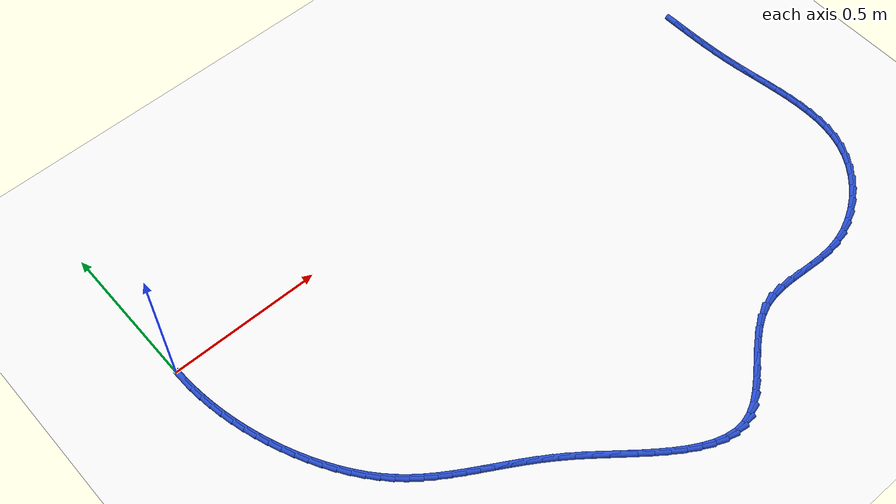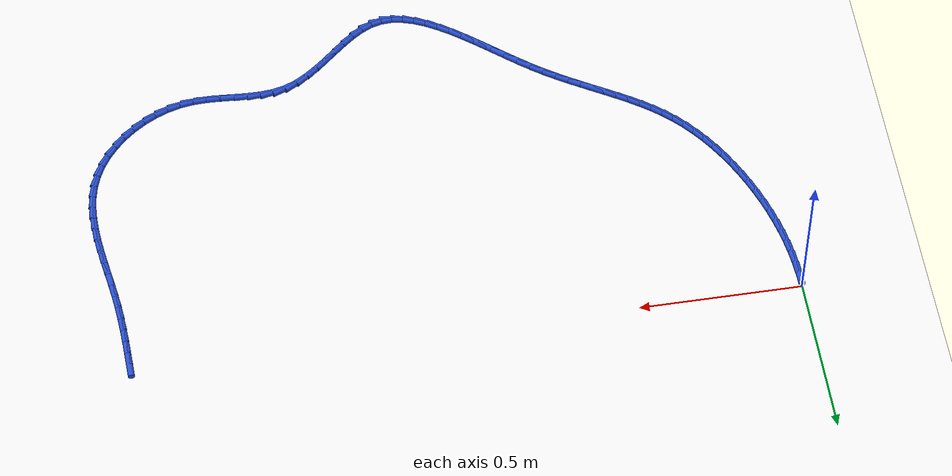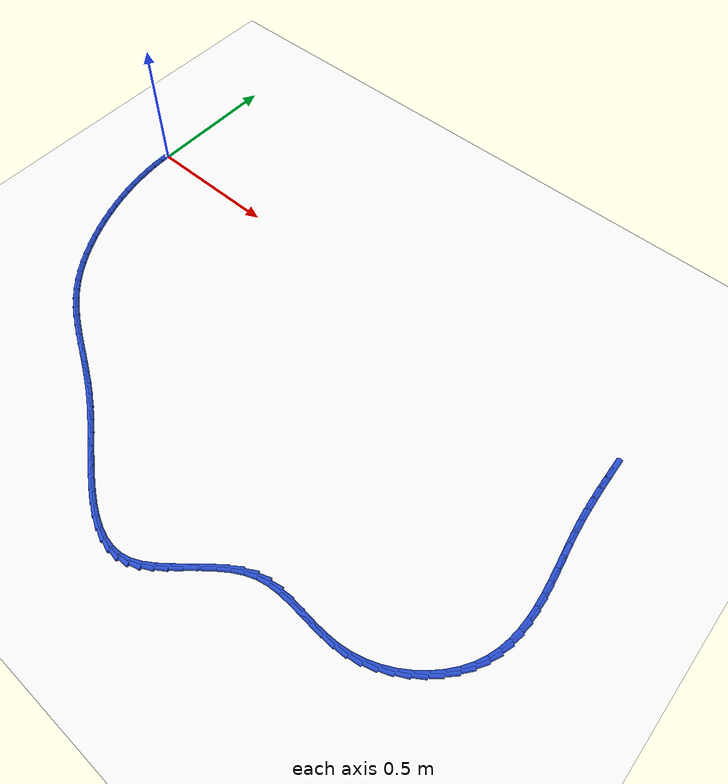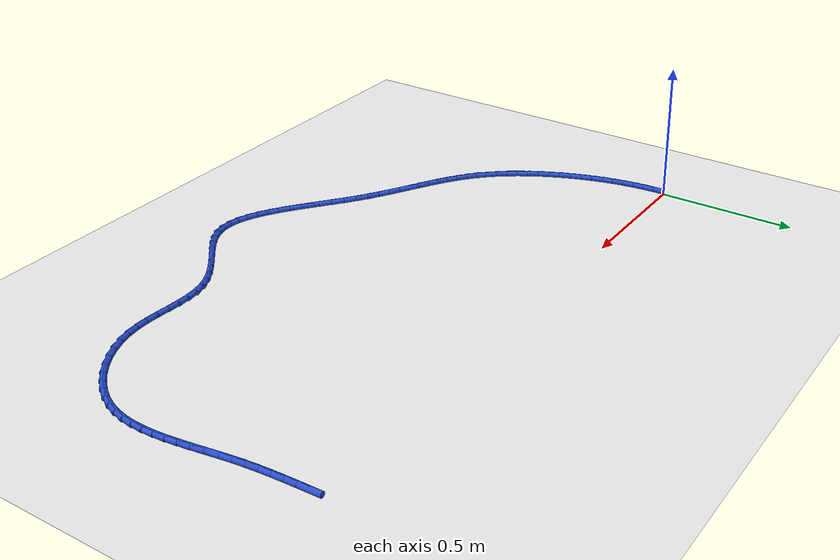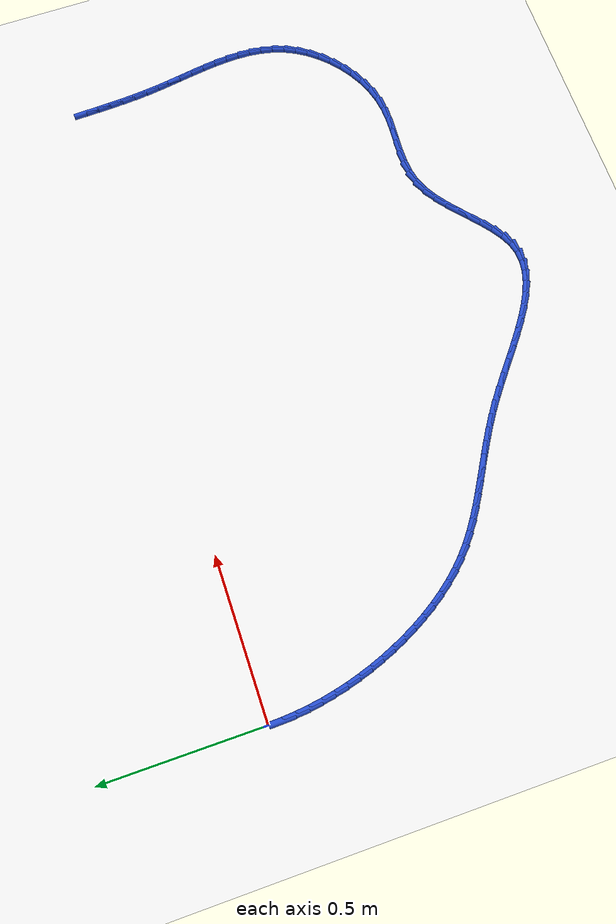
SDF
<sdf version="1.6">
 <world name="default">
  <model name="ground_plane">
   <static>1</static>
   <link name="link">
    <collision name="collision">
     <geometry><plane><normal>0 0 1</normal><size>100 100</size></plane></geometry>
     <surface><friction><ode><mu>100</mu><mu2>50</mu2></ode></friction></surface>
    </collision>
    <visual name="visual">
     <cast_shadows>0</cast_shadows>
     <geometry><plane><normal>0 0 1</normal><size>100 100</size></plane></geometry>
     <material>
      <script><uri>file://media/materials/scripts/gazebo.material</uri><name>Gazebo/WhiteGlow</name></script>
     </material>
    </visual>
   </link>
  </model>
  <model name="line">
   <link name="link_84">
    <pose>2.0396938529456854 -0.029556153190877545 0.01 0 1.57 -1.5382855291011197</pose>
    <collision name="collision">
     <geometry><cylinder><radius>0.01</radius><length>0.08</length></cylinder></geometry>
    </collision>
    <visual name="visual">
     <material>
      <script><name>Gazebo/Blue</name><uri>file://media/materials/scripts/gazebo.material</uri></script>
     </material>
     <geometry><cylinder><radius>0.01</radius><length>0.08</length></cylinder></geometry>
    </visual>
   </link>
   <link name="link_85">
    <pose>2.0410383959297356 -0.07089839454539769 0.01 0 1.57 -1.5310157285431618</pose>
    <collision name="collision">
     <geometry><cylinder><radius>0.01</radius><length>0.08</length></cylinder></geometry>
    </collision>
    <visual name="visual">
     <material>
      <script><name>Gazebo/Blue</name><uri>file://media/materials/scripts/gazebo.material</uri></script>
     </material>
     <geometry><cylinder><radius>0.01</radius><length>0.08</length></cylinder></geometry>
    </visual>
   </link>
   <link name="link_86">
    <pose>2.0426925725535576 -0.11245895493032261 0.01 0 1.57 -1.5189191726422375</pose>
    <collision name="collision">
     <geometry><cylinder><radius>0.01</radius><length>0.08</length></cylinder></geometry>
    </collision>
    <visual name="visual">
     <material>
      <script><name>Gazebo/Blue</name><uri>file://media/materials/scripts/gazebo.material</uri></script>
     </material>
     <geometry><cylinder><radius>0.01</radius><length>0.08</length></cylinder></geometry>
    </visual>
   </link>
   <link name="link_87">
    <pose>2.0448620891354135 -0.15424170185784694 0.01 0 1.57 -1.5020961066079535</pose>
    <collision name="collision">
     <geometry><cylinder><radius>0.01</radius><length>0.08</length></cylinder></geometry>
    </collision>
    <visual name="visual">
     <material>
      <script><name>Gazebo/Blue</name><uri>file://media/materials/scripts/gazebo.material</uri></script>
     </material>
     <geometry><cylinder><radius>0.01</radius><length>0.08</length></cylinder></geometry>
    </visual>
   </link>
   <link name="link_88">
    <pose>2.0477526519935645 -0.1962505028401651 0.01 0 1.57 -1.4806663918116942</pose>
    <collision name="collision">
     <geometry><cylinder><radius>0.01</radius><length>0.08</length></cylinder></geometry>
    </collision>
    <visual name="visual">
     <material>
      <script><name>Gazebo/Blue</name><uri>file://media/materials/scripts/gazebo.material</uri></script>
     </material>
     <geometry><cylinder><radius>0.01</radius><length>0.08</length></cylinder></geometry>
    </visual>
   </link>
   <link name="link_89">
    <pose>2.051569967446272 -0.23848922538947245 0.01 0 1.57 -1.4548525968401103</pose>
    <collision name="collision">
     <geometry><cylinder><radius>0.01</radius><length>0.08</length></cylinder></geometry>
    </collision>
    <visual name="visual">
     <material>
      <script><name>Gazebo/Blue</name><uri>file://media/materials/scripts/gazebo.material</uri></script>
     </material>
     <geometry><cylinder><radius>0.01</radius><length>0.08</length></cylinder></geometry>
    </visual>
   </link>
   <link name="link_90">
    <pose>2.056516510233522 -0.2809611859330222 0.01 0 1.57 -1.4306181891619536</pose>
    <collision name="collision">
     <geometry><cylinder><radius>0.01</radius><length>0.08</length></cylinder></geometry>
    </collision>
    <visual name="visual">
     <material>
      <script><name>Gazebo/Blue</name><uri>file://media/materials/scripts/gazebo.material</uri></script>
     </material>
     <geometry><cylinder><radius>0.01</radius><length>0.08</length></cylinder></geometry>
    </visual>
   </link>
   <link name="link_91">
    <pose>2.0625366230521145 -0.32362568132949554 0.01 0 1.57 -1.4176830591134608</pose>
    <collision name="collision">
     <geometry><cylinder><radius>0.01</radius><length>0.08</length></cylinder></geometry>
    </collision>
    <visual name="visual">
     <material>
      <script><name>Gazebo/Blue</name><uri>file://media/materials/scripts/gazebo.material</uri></script>
     </material>
     <geometry><cylinder><radius>0.01</radius><length>0.08</length></cylinder></geometry>
    </visual>
   </link>
   <link name="link_92">
    <pose>2.069132448910016 -0.3663665995914416 0.01 0 1.57 -1.4167291834835132</pose>
    <collision name="collision">
     <geometry><cylinder><radius>0.01</radius><length>0.08</length></cylinder></geometry>
    </collision>
    <visual name="visual">
     <material>
      <script><name>Gazebo/Blue</name><uri>file://media/materials/scripts/gazebo.material</uri></script>
     </material>
     <geometry><cylinder><radius>0.01</radius><length>0.08</length></cylinder></geometry>
    </visual>
   </link>
   <link name="link_93">
    <pose>2.0757627077589844 -0.4090604237452761 0.01 0 1.57 -1.4277778596304114</pose>
    <collision name="collision">
     <geometry><cylinder><radius>0.01</radius><length>0.08</length></cylinder></geometry>
    </collision>
    <visual name="visual">
     <material>
      <script><name>Gazebo/Blue</name><uri>file://media/materials/scripts/gazebo.material</uri></script>
     </material>
     <geometry><cylinder><radius>0.01</radius><length>0.08</length></cylinder></geometry>
    </visual>
   </link>
   <link name="link_94">
    <pose>2.081886119550777 -0.45158363681741515 0.01 0 1.57 -1.451185448711083</pose>
    <collision name="collision">
     <geometry><cylinder><radius>0.01</radius><length>0.08</length></cylinder></geometry>
    </collision>
    <visual name="visual">
     <material>
      <script><name>Gazebo/Blue</name><uri>file://media/materials/scripts/gazebo.material</uri></script>
     </material>
     <geometry><cylinder><radius>0.01</radius><length>0.08</length></cylinder></geometry>
    </visual>
   </link>
   <link name="link_95">
    <pose>2.086961404237152 -0.49381272183427255 0.01 0 1.57 -1.4876173088226468</pose>
    <collision name="collision">
     <geometry><cylinder><radius>0.01</radius><length>0.08</length></cylinder></geometry>
    </collision>
    <visual name="visual">
     <material>
      <script><name>Gazebo/Blue</name><uri>file://media/materials/scripts/gazebo.material</uri></script>
     </material>
     <geometry><cylinder><radius>0.01</radius><length>0.08</length></cylinder></geometry>
    </visual>
   </link>
   <link name="link_96">
    <pose>2.090447281769866 -0.5356241618222645 0.01 0 1.57 -1.5379711647963998</pose>
    <collision name="collision">
     <geometry><cylinder><radius>0.01</radius><length>0.08</length></cylinder></geometry>
    </collision>
    <visual name="visual">
     <material>
      <script><name>Gazebo/Blue</name><uri>file://media/materials/scripts/gazebo.material</uri></script>
     </material>
     <geometry><cylinder><radius>0.01</radius><length>0.08</length></cylinder></geometry>
    </visual>
   </link>
   <link name="link_97">
    <pose>2.091802472100677 -0.5768944398078065 0.01 0 1.57 1.5383792299869539</pose>
    <collision name="collision">
     <geometry><cylinder><radius>0.01</radius><length>0.08</length></cylinder></geometry>
    </collision>
    <visual name="visual">
     <material>
      <script><name>Gazebo/Blue</name><uri>file://media/materials/scripts/gazebo.material</uri></script>
     </material>
     <geometry><cylinder><radius>0.01</radius><length>0.08</length></cylinder></geometry>
    </visual>
   </link>
   <link name="link_98">
    <pose>2.090485695181342 -0.6175000388173137 0.01 0 1.57 1.457513457349185</pose>
    <collision name="collision">
     <geometry><cylinder><radius>0.01</radius><length>0.08</length></cylinder></geometry>
    </collision>
    <visual name="visual">
     <material>
      <script><name>Gazebo/Blue</name><uri>file://media/materials/scripts/gazebo.material</uri></script>
     </material>
     <geometry><cylinder><radius>0.01</radius><length>0.08</length></cylinder></geometry>
    </visual>
   </link>
   <link name="link_99">
    <pose>2.085955670963618 -0.6573174418772025 0.01 0 1.57 1.3609906234305165</pose>
    <collision name="collision">
     <geometry><cylinder><radius>0.01</radius><length>0.08</length></cylinder></geometry>
    </collision>
    <visual name="visual">
     <material>
      <script><name>Gazebo/Blue</name><uri>file://media/materials/scripts/gazebo.material</uri></script>
     </material>
     <geometry><cylinder><radius>0.01</radius><length>0.08</length></cylinder></geometry>
    </visual>
   </link>
   <link name="link_100">
    <pose>2.0776711193992634 -0.696223132013887 0.01 0 1.57 1.250071063888841</pose>
    <collision name="collision">
     <geometry><cylinder><radius>0.01</radius><length>0.08</length></cylinder></geometry>
    </collision>
    <visual name="visual">
     <material>
      <script><name>Gazebo/Blue</name><uri>file://media/materials/scripts/gazebo.material</uri></script>
     </material>
     <geometry><cylinder><radius>0.01</radius><length>0.08</length></cylinder></geometry>
    </visual>
   </link>
   <link name="link_101">
    <pose>2.0650907604400355 -0.7340935922537828 0.01 0 1.57 1.1286592107489166</pose>
    <collision name="collision">
     <geometry><cylinder><radius>0.01</radius><length>0.08</length></cylinder></geometry>
    </collision>
    <visual name="visual">
     <material>
      <script><name>Gazebo/Blue</name><uri>file://media/materials/scripts/gazebo.material</uri></script>
     </material>
     <geometry><cylinder><radius>0.01</radius><length>0.08</length></cylinder></geometry>
    </visual>
   </link>
   <link name="link_102">
    <pose>2.0477188138657327 -0.7707901895125954 0.01 0 1.57 1.010509696901732</pose>
    <collision name="collision">
     <geometry><cylinder><radius>0.01</radius><length>0.08</length></cylinder></geometry>
    </collision>
    <visual name="visual">
     <material>
      <script><name>Gazebo/Blue</name><uri>file://media/materials/scripts/gazebo.material</uri></script>
     </material>
     <geometry><cylinder><radius>0.01</radius><length>0.08</length></cylinder></geometry>
    </visual>
   </link>
   <link name="link_103">
    <pose>2.025642052610066 -0.8059807528763605 0.01 0 1.57 0.9012709242621301</pose>
    <collision name="collision">
     <geometry><cylinder><radius>0.01</radius><length>0.08</length></cylinder></geometry>
    </collision>
    <visual name="visual">
     <material>
      <script><name>Gazebo/Blue</name><uri>file://media/materials/scripts/gazebo.material</uri></script>
     </material>
     <geometry><cylinder><radius>0.01</radius><length>0.08</length></cylinder></geometry>
    </visual>
   </link>
   <link name="link_104">
    <pose>1.999350223377474 -0.8391992340870903 0.01 0 1.57 0.7980412639157727</pose>
    <collision name="collision">
     <geometry><cylinder><radius>0.01</radius><length>0.08</length></cylinder></geometry>
    </collision>
    <visual name="visual">
     <material>
      <script><name>Gazebo/Blue</name><uri>file://media/materials/scripts/gazebo.material</uri></script>
     </material>
     <geometry><cylinder><radius>0.01</radius><length>0.08</length></cylinder></geometry>
    </visual>
   </link>
   <link name="link_105">
    <pose>1.9693411205163889 -0.8699769112705878 0.01 0 1.57 0.6978854711078528</pose>
    <collision name="collision">
     <geometry><cylinder><radius>0.01</radius><length>0.08</length></cylinder></geometry>
    </collision>
    <visual name="visual">
     <material>
      <script><name>Gazebo/Blue</name><uri>file://media/materials/scripts/gazebo.material</uri></script>
     </material>
     <geometry><cylinder><radius>0.01</radius><length>0.08</length></cylinder></geometry>
    </visual>
   </link>
   <link name="link_106">
    <pose>1.9361125383752458 -0.89784506255266 0.01 0 1.57 0.5980078189242907</pose>
    <collision name="collision">
     <geometry><cylinder><radius>0.01</radius><length>0.08</length></cylinder></geometry>
    </collision>
    <visual name="visual">
     <material>
      <script><name>Gazebo/Blue</name><uri>file://media/materials/scripts/gazebo.material</uri></script>
     </material>
     <geometry><cylinder><radius>0.01</radius><length>0.08</length></cylinder></geometry>
    </visual>
   </link>
   <link name="link_107">
    <pose>1.9001622713024777 -0.9223349660591111 0.01 0 1.57 0.4957189879839872</pose>
    <collision name="collision">
     <geometry><cylinder><radius>0.01</radius><length>0.08</length></cylinder></geometry>
    </collision>
    <visual name="visual">
     <material>
      <script><name>Gazebo/Blue</name><uri>file://media/materials/scripts/gazebo.material</uri></script>
     </material>
     <geometry><cylinder><radius>0.01</radius><length>0.08</length></cylinder></geometry>
    </visual>
   </link>
   <link name="link_108">
    <pose>1.8619881136465193 -0.9429778999157472 0.01 0 1.57 0.3884134205178441</pose>
    <collision name="collision">
     <geometry><cylinder><radius>0.01</radius><length>0.08</length></cylinder></geometry>
    </collision>
    <visual name="visual">
     <material>
      <script><name>Gazebo/Blue</name><uri>file://media/materials/scripts/gazebo.material</uri></script>
     </material>
     <geometry><cylinder><radius>0.01</radius><length>0.08</length></cylinder></geometry>
    </visual>
   </link>
   <link name="link_109">
    <pose>1.8220878597558032 -0.9593051422483726 0.01 0 1.57 0.27361359447916395</pose>
    <collision name="collision">
     <geometry><cylinder><radius>0.01</radius><length>0.08</length></cylinder></geometry>
    </collision>
    <visual name="visual">
     <material>
      <script><name>Gazebo/Blue</name><uri>file://media/materials/scripts/gazebo.material</uri></script>
     </material>
     <geometry><cylinder><radius>0.01</radius><length>0.08</length></cylinder></geometry>
    </visual>
   </link>
   <link name="link_110">
    <pose>1.7809593039787623 -0.9708479711827931 0.01 0 1.57 0.1500103798872756</pose>
    <collision name="collision">
     <geometry><cylinder><radius>0.01</radius><length>0.08</length></cylinder></geometry>
    </collision>
    <visual name="visual">
     <material>
      <script><name>Gazebo/Blue</name><uri>file://media/materials/scripts/gazebo.material</uri></script>
     </material>
     <geometry><cylinder><radius>0.01</radius><length>0.08</length></cylinder></geometry>
    </visual>
   </link>
   <link name="link_111">
    <pose>1.739096104954269 -0.9771754193575535 0.01 0 1.57 0.0394619215710659</pose>
    <collision name="collision">
     <geometry><cylinder><radius>0.01</radius><length>0.08</length></cylinder></geometry>
    </collision>
    <visual name="visual">
     <material>
      <script><name>Gazebo/Blue</name><uri>file://media/materials/scripts/gazebo.material</uri></script>
     </material>
     <geometry><cylinder><radius>0.01</radius><length>0.08</length></cylinder></geometry>
    </visual>
   </link>
   <link name="link_112">
    <pose>1.6968839634628157 -0.978842056784226 0.01 0 1.57 -0.032718746536957534</pose>
    <collision name="collision">
     <geometry><cylinder><radius>0.01</radius><length>0.08</length></cylinder></geometry>
    </collision>
    <visual name="visual">
     <material>
      <script><name>Gazebo/Blue</name><uri>file://media/materials/scripts/gazebo.material</uri></script>
     </material>
     <geometry><cylinder><radius>0.01</radius><length>0.08</length></cylinder></geometry>
    </visual>
   </link>
   <link name="link_113">
    <pose>1.6545929694138861 -0.9774578544968167 0.01 0 1.57 -0.06577116878014458</pose>
    <collision name="collision">
     <geometry><cylinder><radius>0.01</radius><length>0.08</length></cylinder></geometry>
    </collision>
    <visual name="visual">
     <material>
      <script><name>Gazebo/Blue</name><uri>file://media/materials/scripts/gazebo.material</uri></script>
     </material>
     <geometry><cylinder><radius>0.01</radius><length>0.08</length></cylinder></geometry>
    </visual>
   </link>
   <link name="link_114">
    <pose>1.6124875441538336 -0.9746845313214857 0.01 0 1.57 -0.059961622734761244</pose>
    <collision name="collision">
     <geometry><cylinder><radius>0.01</radius><length>0.08</length></cylinder></geometry>
    </collision>
    <visual name="visual">
     <material>
      <script><name>Gazebo/Blue</name><uri>file://media/materials/scripts/gazebo.material</uri></script>
     </material>
     <geometry><cylinder><radius>0.01</radius><length>0.08</length></cylinder></geometry>
    </visual>
   </link>
   <link name="link_115">
    <pose>1.57083210902901 -0.9721838060843923 0.01 0 1.57 -0.013833858794219014</pose>
    <collision name="collision">
     <geometry><cylinder><radius>0.01</radius><length>0.08</length></cylinder></geometry>
    </collision>
    <visual name="visual">
     <material>
      <script><name>Gazebo/Blue</name><uri>file://media/materials/scripts/gazebo.material</uri></script>
     </material>
     <geometry><cylinder><radius>0.01</radius><length>0.08</length></cylinder></geometry>
    </visual>
   </link>
   <link name="link_116">
    <pose>1.5298910853857706 -0.9716173976116969 0.01 0 1.57 0.07566759276979648</pose>
    <collision name="collision">
     <geometry><cylinder><radius>0.01</radius><length>0.08</length></cylinder></geometry>
    </collision>
    <visual name="visual">
     <material>
      <script><name>Gazebo/Blue</name><uri>file://media/materials/scripts/gazebo.material</uri></script>
     </material>
     <geometry><cylinder><radius>0.01</radius><length>0.08</length></cylinder></geometry>
    </visual>
   </link>
   <link name="link_117">
    <pose>1.4899288945704665 -0.974647024729559 0.01 0 1.57 0.2108579089514976</pose>
    <collision name="collision">
     <geometry><cylinder><radius>0.01</radius><length>0.08</length></cylinder></geometry>
    </collision>
    <visual name="visual">
     <material>
      <script><name>Gazebo/Blue</name><uri>file://media/materials/scripts/gazebo.material</uri></script>
     </material>
     <geometry><cylinder><radius>0.01</radius><length>0.08</length></cylinder></geometry>
    </visual>
   </link>
   <link name="link_118">
    <pose>1.4512099579294513 -0.9829344062641385 0.01 0 1.57 0.381851680152763</pose>
    <collision name="collision">
     <geometry><cylinder><radius>0.01</radius><length>0.08</length></cylinder></geometry>
    </collision>
    <visual name="visual">
     <material>
      <script><name>Gazebo/Blue</name><uri>file://media/materials/scripts/gazebo.material</uri></script>
     </material>
     <geometry><cylinder><radius>0.01</radius><length>0.08</length></cylinder></geometry>
    </visual>
   </link>
   <link name="link_119">
    <pose>1.4139607496939401 -0.9978922501996915 0.01 0 1.57 0.5292058240668932</pose>
    <collision name="collision">
     <geometry><cylinder><radius>0.01</radius><length>0.08</length></cylinder></geometry>
    </collision>
    <visual name="visual">
     <material>
      <script><name>Gazebo/Blue</name><uri>file://media/materials/scripts/gazebo.material</uri></script>
     </material>
     <geometry><cylinder><radius>0.01</radius><length>0.08</length></cylinder></geometry>
    </visual>
   </link>
   <link name="link_120">
    <pose>1.37809322810269 -1.018869395059266 0.01 0 1.57 0.6300606167257927</pose>
    <collision name="collision">
     <geometry><cylinder><radius>0.01</radius><length>0.08</length></cylinder></geometry>
    </collision>
    <visual name="visual">
     <material>
      <script><name>Gazebo/Blue</name><uri>file://media/materials/scripts/gazebo.material</uri></script>
     </material>
     <geometry><cylinder><radius>0.01</radius><length>0.08</length></cylinder></geometry>
    </visual>
   </link>
   <link name="link_121">
    <pose>1.343363856731896 -1.0441943157178386 0.01 0 1.57 0.691193604047471</pose>
    <collision name="collision">
     <geometry><cylinder><radius>0.01</radius><length>0.08</length></cylinder></geometry>
    </collision>
    <visual name="visual">
     <material>
      <script><name>Gazebo/Blue</name><uri>file://media/materials/scripts/gazebo.material</uri></script>
     </material>
     <geometry><cylinder><radius>0.01</radius><length>0.08</length></cylinder></geometry>
    </visual>
   </link>
   <link name="link_122">
    <pose>1.3095279945532068 -1.0721882385808446 0.01 0 1.57 0.7178996833555653</pose>
    <collision name="collision">
     <geometry><cylinder><radius>0.01</radius><length>0.08</length></cylinder></geometry>
    </collision>
    <visual name="visual">
     <material>
      <script><name>Gazebo/Blue</name><uri>file://media/materials/scripts/gazebo.material</uri></script>
     </material>
     <geometry><cylinder><radius>0.01</radius><length>0.08</length></cylinder></geometry>
    </visual>
   </link>
   <link name="link_123">
    <pose>1.2763410005382712 -1.1011723900537191 0.01 0 1.57 0.7120642893936285</pose>
    <collision name="collision">
     <geometry><cylinder><radius>0.01</radius><length>0.08</length></cylinder></geometry>
    </collision>
    <visual name="visual">
     <material>
      <script><name>Gazebo/Blue</name><uri>file://media/materials/scripts/gazebo.material</uri></script>
     </material>
     <geometry><cylinder><radius>0.01</radius><length>0.08</length></cylinder></geometry>
    </visual>
   </link>
   <link name="link_124">
    <pose>1.2435582336587374 -1.1294679965418983 0.01 0 1.57 0.6715505825548316</pose>
    <collision name="collision">
     <geometry><cylinder><radius>0.01</radius><length>0.08</length></cylinder></geometry>
    </collision>
    <visual name="visual">
     <material>
      <script><name>Gazebo/Blue</name><uri>file://media/materials/scripts/gazebo.material</uri></script>
     </material>
     <geometry><cylinder><radius>0.01</radius><length>0.08</length></cylinder></geometry>
    </visual>
   </link>
   <link name="link_125">
    <pose>1.2109350528862537 -1.1553962844508174 0.01 0 1.57 0.5896244026731458</pose>
    <collision name="collision">
     <geometry><cylinder><radius>0.01</radius><length>0.08</length></cylinder></geometry>
    </collision>
    <visual name="visual">
     <material>
      <script><name>Gazebo/Blue</name><uri>file://media/materials/scripts/gazebo.material</uri></script>
     </material>
     <geometry><cylinder><radius>0.01</radius><length>0.08</length></cylinder></geometry>
    </visual>
   </link>
   <link name="link_126">
    <pose>1.178226817192468 -1.1772784801859122 0.01 0 1.57 0.4548524615445685</pose>
    <collision name="collision">
     <geometry><cylinder><radius>0.01</radius><length>0.08</length></cylinder></geometry>
    </collision>
    <visual name="visual">
     <material>
      <script><name>Gazebo/Blue</name><uri>file://media/materials/scripts/gazebo.material</uri></script>
     </material>
     <geometry><cylinder><radius>0.01</radius><length>0.08</length></cylinder></geometry>
    </visual>
   </link>
   <link name="link_127">
    <pose>1.14518888554903 -1.1934358101526172 0.01 0 1.57 0.2586158096290607</pose>
    <collision name="collision">
     <geometry><cylinder><radius>0.01</radius><length>0.08</length></cylinder></geometry>
    </collision>
    <visual name="visual">
     <material>
      <script><name>Gazebo/Blue</name><uri>file://media/materials/scripts/gazebo.material</uri></script>
     </material>
     <geometry><cylinder><radius>0.01</radius><length>0.08</length></cylinder></geometry>
    </visual>
   </link>
   <link name="link_128">
    <pose>1.1115929703107865 -1.2023232715651857 0.01 0 1.57 0.04401285829385029</pose>
    <collision name="collision">
     <geometry><cylinder><radius>0.01</radius><length>0.08</length></cylinder></geometry>
    </collision>
    <visual name="visual">
     <material>
      <script><name>Gazebo/Blue</name><uri>file://media/materials/scripts/gazebo.material</uri></script>
     </material>
     <geometry><cylinder><radius>0.01</radius><length>0.08</length></cylinder></geometry>
    </visual>
   </link>
   <link name="link_129">
    <pose>1.0773860802132345 -1.2038297874706083 0.01 0 1.57 -0.14608091547044172</pose>
    <collision name="collision">
     <geometry><cylinder><radius>0.01</radius><length>0.08</length></cylinder></geometry>
    </collision>
    <visual name="visual">
     <material>
      <script><name>Gazebo/Blue</name><uri>file://media/materials/scripts/gazebo.material</uri></script>
     </material>
     <geometry><cylinder><radius>0.01</radius><length>0.08</length></cylinder></geometry>
    </visual>
   </link>
   <link name="link_130">
    <pose>1.0426216607353236 -1.1987149343510726 0.01 0 1.57 -0.30142356090403927</pose>
    <collision name="collision">
     <geometry><cylinder><radius>0.01</radius><length>0.08</length></cylinder></geometry>
    </collision>
    <visual name="visual">
     <material>
      <script><name>Gazebo/Blue</name><uri>file://media/materials/scripts/gazebo.material</uri></script>
     </material>
     <geometry><cylinder><radius>0.01</radius><length>0.08</length></cylinder></geometry>
    </visual>
   </link>
   <link name="link_131">
    <pose>1.007354654821421 -1.187750537968179 0.01 0 1.57 -0.4221673230352833</pose>
    <collision name="collision">
     <geometry><cylinder><radius>0.01</radius><length>0.08</length></cylinder></geometry>
    </collision>
    <visual name="visual">
     <material>
      <script><name>Gazebo/Blue</name><uri>file://media/materials/scripts/gazebo.material</uri></script>
     </material>
     <geometry><cylinder><radius>0.01</radius><length>0.08</length></cylinder></geometry>
    </visual>
   </link>
   <link name="link_132">
    <pose>0.971640005415895 -1.171708424083527 0.01 0 1.57 -0.5131806025507888</pose>
    <collision name="collision">
     <geometry><cylinder><radius>0.01</radius><length>0.08</length></cylinder></geometry>
    </collision>
    <visual name="visual">
     <material>
      <script><name>Gazebo/Blue</name><uri>file://media/materials/scripts/gazebo.material</uri></script>
     </material>
     <geometry><cylinder><radius>0.01</radius><length>0.08</length></cylinder></geometry>
    </visual>
   </link>
   <link name="link_133">
    <pose>0.9355326554631129 -1.1513604184587167 0.01 0 1.57 -0.5800842169747669</pose>
    <collision name="collision">
     <geometry><cylinder><radius>0.01</radius><length>0.08</length></cylinder></geometry>
    </collision>
    <visual name="visual">
     <material>
      <script><name>Gazebo/Blue</name><uri>file://media/materials/scripts/gazebo.material</uri></script>
     </material>
     <geometry><cylinder><radius>0.01</radius><length>0.08</length></cylinder></geometry>
    </visual>
   </link>
   <link name="link_134">
    <pose>0.8990875479074422 -1.1274783468553478 0.01 0 1.57 -0.627603815440761</pose>
    <collision name="collision">
     <geometry><cylinder><radius>0.01</radius><length>0.08</length></cylinder></geometry>
    </collision>
    <visual name="visual">
     <material>
      <script><name>Gazebo/Blue</name><uri>file://media/materials/scripts/gazebo.material</uri></script>
     </material>
     <geometry><cylinder><radius>0.01</radius><length>0.08</length></cylinder></geometry>
    </visual>
   </link>
   <link name="link_135">
    <pose>0.862359625693251 -1.1008340350350203 0.01 0 1.57 -0.6592083903627955</pose>
    <collision name="collision">
     <geometry><cylinder><radius>0.01</radius><length>0.08</length></cylinder></geometry>
    </collision>
    <visual name="visual">
     <material>
      <script><name>Gazebo/Blue</name><uri>file://media/materials/scripts/gazebo.material</uri></script>
     </material>
     <geometry><cylinder><radius>0.01</radius><length>0.08</length></cylinder></geometry>
    </visual>
   </link>
   <link name="link_136">
    <pose>0.8254038317649058 -1.072199308759334 0.01 0 1.57 -0.6772050156439591</pose>
    <collision name="collision">
     <geometry><cylinder><radius>0.01</radius><length>0.08</length></cylinder></geometry>
    </collision>
    <visual name="visual">
     <material>
      <script><name>Gazebo/Blue</name><uri>file://media/materials/scripts/gazebo.material</uri></script>
     </material>
     <geometry><cylinder><radius>0.01</radius><length>0.08</length></cylinder></geometry>
    </visual>
   </link>
   <link name="link_137">
    <pose>0.7882751090667754 -1.0423459937898891 0.01 0 1.57 -0.682916682711263</pose>
    <collision name="collision">
     <geometry><cylinder><radius>0.01</radius><length>0.08</length></cylinder></geometry>
    </collision>
    <visual name="visual">
     <material>
      <script><name>Gazebo/Blue</name><uri>file://media/materials/scripts/gazebo.material</uri></script>
     </material>
     <geometry><cylinder><radius>0.01</radius><length>0.08</length></cylinder></geometry>
    </visual>
   </link>
   <link name="link_138">
    <pose>0.7510284005432274 -1.0120459158882853 0.01 0 1.57 -0.6768165541791454</pose>
    <collision name="collision">
     <geometry><cylinder><radius>0.01</radius><length>0.08</length></cylinder></geometry>
    </collision>
    <visual name="visual">
     <material>
      <script><name>Gazebo/Blue</name><uri>file://media/materials/scripts/gazebo.material</uri></script>
     </material>
     <geometry><cylinder><radius>0.01</radius><length>0.08</length></cylinder></geometry>
    </visual>
   </link>
   <link name="link_139">
    <pose>0.7137186491386285 -0.982070900816122 0.01 0 1.57 -0.6585862917946916</pose>
    <collision name="collision">
     <geometry><cylinder><radius>0.01</radius><length>0.08</length></cylinder></geometry>
    </collision>
    <visual name="visual">
     <material>
      <script><name>Gazebo/Blue</name><uri>file://media/materials/scripts/gazebo.material</uri></script>
     </material>
     <geometry><cylinder><radius>0.01</radius><length>0.08</length></cylinder></geometry>
    </visual>
   </link>
   <link name="link_140">
    <pose>0.6764007977973471 -0.9531927743349997 0.01 0 1.57 -0.6275673450679966</pose>
    <collision name="collision">
     <geometry><cylinder><radius>0.01</radius><length>0.08</length></cylinder></geometry>
    </collision>
    <visual name="visual">
     <material>
      <script><name>Gazebo/Blue</name><uri>file://media/materials/scripts/gazebo.material</uri></script>
     </material>
     <geometry><cylinder><radius>0.01</radius><length>0.08</length></cylinder></geometry>
    </visual>
   </link>
   <link name="link_141">
    <pose>0.6391312169423445 -0.9261575901723373 0.01 0 1.57 -0.59276409193791</pose>
    <collision name="collision">
     <geometry><cylinder><radius>0.01</radius><length>0.08</length></cylinder></geometry>
    </collision>
    <visual name="visual">
     <material>
      <script><name>Gazebo/Blue</name><uri>file://media/materials/scripts/gazebo.material</uri></script>
     </material>
     <geometry><cylinder><radius>0.01</radius><length>0.08</length></cylinder></geometry>
    </visual>
   </link>
   <link name="link_142">
    <pose>0.6019976135066878 -0.9011456453340289 0.01 0 1.57 -0.564619936289243</pose>
    <collision name="collision">
     <geometry><cylinder><radius>0.01</radius><length>0.08</length></cylinder></geometry>
    </collision>
    <visual name="visual">
     <material>
      <script><name>Gazebo/Blue</name><uri>file://media/materials/scripts/gazebo.material</uri></script>
     </material>
     <geometry><cylinder><radius>0.01</radius><length>0.08</length></cylinder></geometry>
    </visual>
   </link>
   <link name="link_143">
    <pose>0.565118221953415 -0.8777860856220334 0.01 0 1.57 -0.5443874602063774</pose>
    <collision name="collision">
     <geometry><cylinder><radius>0.01</radius><length>0.08</length></cylinder></geometry>
    </collision>
    <visual name="visual">
     <material>
      <script><name>Gazebo/Blue</name><uri>file://media/materials/scripts/gazebo.material</uri></script>
     </material>
     <geometry><cylinder><radius>0.01</radius><length>0.08</length></cylinder></geometry>
    </visual>
   </link>
   <link name="link_144">
    <pose>0.5286125423934309 -0.8556852065340828 0.01 0 1.57 -0.5327981719165904</pose>
    <collision name="collision">
     <geometry><cylinder><radius>0.01</radius><length>0.08</length></cylinder></geometry>
    </collision>
    <visual name="visual">
     <material>
      <script><name>Gazebo/Blue</name><uri>file://media/materials/scripts/gazebo.material</uri></script>
     </material>
     <geometry><cylinder><radius>0.01</radius><length>0.08</length></cylinder></geometry>
    </visual>
   </link>
   <link name="link_145">
    <pose>0.4926000749376424 -0.8344493035679108 0.01 0 1.57 -0.5304901075452843</pose>
    <collision name="collision">
     <geometry><cylinder><radius>0.01</radius><length>0.08</length></cylinder></geometry>
    </collision>
    <visual name="visual">
     <material>
      <script><name>Gazebo/Blue</name><uri>file://media/materials/scripts/gazebo.material</uri></script>
     </material>
     <geometry><cylinder><radius>0.01</radius><length>0.08</length></cylinder></geometry>
    </visual>
   </link>
   <link name="link_146">
    <pose>0.4572003196969552 -0.8136846722212498 0.01 0 1.57 -0.5380095209497538</pose>
    <collision name="collision">
     <geometry><cylinder><radius>0.01</radius><length>0.08</length></cylinder></geometry>
    </collision>
    <visual name="visual">
     <material>
      <script><name>Gazebo/Blue</name><uri>file://media/materials/scripts/gazebo.material</uri></script>
     </material>
     <geometry><cylinder><radius>0.01</radius><length>0.08</length></cylinder></geometry>
    </visual>
   </link>
   <link name="link_147">
    <pose>0.4225327767822749 -0.7929976079918326 0.01 0 1.57 -0.5557939436922392</pose>
    <collision name="collision">
     <geometry><cylinder><radius>0.01</radius><length>0.08</length></cylinder></geometry>
    </collision>
    <visual name="visual">
     <material>
      <script><name>Gazebo/Blue</name><uri>file://media/materials/scripts/gazebo.material</uri></script>
     </material>
     <geometry><cylinder><radius>0.01</radius><length>0.08</length></cylinder></geometry>
    </visual>
   </link>
   <link name="link_148">
    <pose>0.3887169463045091 -0.771994406377393 0.01 0 1.57 -0.5841275483865379</pose>
    <collision name="collision">
     <geometry><cylinder><radius>0.01</radius><length>0.08</length></cylinder></geometry>
    </collision>
    <visual name="visual">
     <material>
      <script><name>Gazebo/Blue</name><uri>file://media/materials/scripts/gazebo.material</uri></script>
     </material>
     <geometry><cylinder><radius>0.01</radius><length>0.08</length></cylinder></geometry>
    </visual>
   </link>
   <link name="link_149">
    <pose>0.3558723283745632 -0.7502813628756636 0.01 0 1.57 -0.6230637313687418</pose>
    <collision name="collision">
     <geometry><cylinder><radius>0.01</radius><length>0.08</length></cylinder></geometry>
    </collision>
    <visual name="visual">
     <material>
      <script><name>Gazebo/Blue</name><uri>file://media/materials/scripts/gazebo.material</uri></script>
     </material>
     <geometry><cylinder><radius>0.01</radius><length>0.08</length></cylinder></geometry>
    </visual>
   </link>
   <link name="link_150">
    <pose>0.32411842310334327 -0.727464772984377 0.01 0 1.57 -0.6723184289678447</pose>
    <collision name="collision">
     <geometry><cylinder><radius>0.01</radius><length>0.08</length></cylinder></geometry>
    </collision>
    <visual name="visual">
     <material>
      <script><name>Gazebo/Blue</name><uri>file://media/materials/scripts/gazebo.material</uri></script>
     </material>
     <geometry><cylinder><radius>0.01</radius><length>0.08</length></cylinder></geometry>
    </visual>
   </link>
   <link name="link_151">
    <pose>0.29357473060175554 -0.7031509322012661 0.01 0 1.57 -0.7311524458449181</pose>
    <collision name="collision">
     <geometry><cylinder><radius>0.01</radius><length>0.08</length></cylinder></geometry>
    </collision>
    <visual name="visual">
     <material>
      <script><name>Gazebo/Blue</name><uri>file://media/materials/scripts/gazebo.material</uri></script>
     </material>
     <geometry><cylinder><radius>0.01</radius><length>0.08</length></cylinder></geometry>
    </visual>
   </link>
   <link name="link_152">
    <pose>0.2643607509807062 -0.6769461360240642 0.01 0 1.57 -0.7968130634263451</pose>
    <collision name="collision">
     <geometry><cylinder><radius>0.01</radius><length>0.08</length></cylinder></geometry>
    </collision>
    <visual name="visual">
     <material>
      <script><name>Gazebo/Blue</name><uri>file://media/materials/scripts/gazebo.material</uri></script>
     </material>
     <geometry><cylinder><radius>0.01</radius><length>0.08</length></cylinder></geometry>
    </visual>
   </link>
   <link name="link_153">
    <pose>0.2365836842437138 -0.6485275739395017 0.01 0 1.57 -0.8599423461858627</pose>
    <collision name="collision">
     <geometry><cylinder><radius>0.01</radius><length>0.08</length></cylinder></geometry>
    </collision>
    <visual name="visual">
     <material>
      <script><name>Gazebo/Blue</name><uri>file://media/materials/scripts/gazebo.material</uri></script>
     </material>
     <geometry><cylinder><radius>0.01</radius><length>0.08</length></cylinder></geometry>
    </visual>
   </link>
   <link name="link_154">
    <pose>0.21028031271927713 -0.6179783009866318 0.01 0 1.57 -0.9179281948251726</pose>
    <collision name="collision">
     <geometry><cylinder><radius>0.01</radius><length>0.08</length></cylinder></geometry>
    </collision>
    <visual name="visual">
     <material>
      <script><name>Gazebo/Blue</name><uri>file://media/materials/scripts/gazebo.material</uri></script>
     </material>
     <geometry><cylinder><radius>0.01</radius><length>0.08</length></cylinder></geometry>
    </visual>
   </link>
   <link name="link_155">
    <pose>0.18546240267449524 -0.5855255569929584 0.01 0 1.57 -0.971356551457237</pose>
    <collision name="collision">
     <geometry><cylinder><radius>0.01</radius><length>0.08</length></cylinder></geometry>
    </collision>
    <visual name="visual">
     <material>
      <script><name>Gazebo/Blue</name><uri>file://media/materials/scripts/gazebo.material</uri></script>
     </material>
     <geometry><cylinder><radius>0.01</radius><length>0.08</length></cylinder></geometry>
    </visual>
   </link>
   <link name="link_156">
    <pose>0.16214169044910878 -0.5513967542779633 0.01 0 1.57 -1.0208155598035622</pose>
    <collision name="collision">
     <geometry><cylinder><radius>0.01</radius><length>0.08</length></cylinder></geometry>
    </collision>
    <visual name="visual">
     <material>
      <script><name>Gazebo/Blue</name><uri>file://media/materials/scripts/gazebo.material</uri></script>
     </material>
     <geometry><cylinder><radius>0.01</radius><length>0.08</length></cylinder></geometry>
    </visual>
   </link>
   <link name="link_157">
    <pose>0.14032991238285847 -0.5158193051611287 0.01 0 1.57 -1.0668723591364062</pose>
    <collision name="collision">
     <geometry><cylinder><radius>0.01</radius><length>0.08</length></cylinder></geometry>
    </collision>
    <visual name="visual">
     <material>
      <script><name>Gazebo/Blue</name><uri>file://media/materials/scripts/gazebo.material</uri></script>
     </material>
     <geometry><cylinder><radius>0.01</radius><length>0.08</length></cylinder></geometry>
    </visual>
   </link>
   <link name="link_158">
    <pose>0.12003880481548473 -0.479020621961936 0.01 0 1.57 -1.1100646803201737</pose>
    <collision name="collision">
     <geometry><cylinder><radius>0.01</radius><length>0.08</length></cylinder></geometry>
    </collision>
    <visual name="visual">
     <material>
      <script><name>Gazebo/Blue</name><uri>file://media/materials/scripts/gazebo.material</uri></script>
     </material>
     <geometry><cylinder><radius>0.01</radius><length>0.08</length></cylinder></geometry>
    </visual>
   </link>
   <link name="link_159">
    <pose>0.10128010408672895 -0.4412281169998684 0.01 0 1.57 -1.1509000112124643</pose>
    <collision name="collision">
     <geometry><cylinder><radius>0.01</radius><length>0.08</length></cylinder></geometry>
    </collision>
    <visual name="visual">
     <material>
      <script><name>Gazebo/Blue</name><uri>file://media/materials/scripts/gazebo.material</uri></script>
     </material>
     <geometry><cylinder><radius>0.01</radius><length>0.08</length></cylinder></geometry>
    </visual>
   </link>
   <link name="link_160">
    <pose>0.08406554653633155 -0.40266920259440747 0.01 0 1.57 -1.1898597727750815</pose>
    <collision name="collision">
     <geometry><cylinder><radius>0.01</radius><length>0.08</length></cylinder></geometry>
    </collision>
    <visual name="visual">
     <material>
      <script><name>Gazebo/Blue</name><uri>file://media/materials/scripts/gazebo.material</uri></script>
     </material>
     <geometry><cylinder><radius>0.01</radius><length>0.08</length></cylinder></geometry>
    </visual>
   </link>
   <link name="link_161">
    <pose>0.06840686850403313 -0.36357129106503494 0.01 0 1.57 -1.227655570715077</pose>
    <collision name="collision">
     <geometry><cylinder><radius>0.01</radius><length>0.08</length></cylinder></geometry>
    </collision>
    <visual name="visual">
     <material>
      <script><name>Gazebo/Blue</name><uri>file://media/materials/scripts/gazebo.material</uri></script>
     </material>
     <geometry><cylinder><radius>0.01</radius><length>0.08</length></cylinder></geometry>
    </visual>
   </link>
   <link name="link_162">
    <pose>0.054316470475890034 -0.32413272228417217 0.01 0 1.57 -1.2657548979365778</pose>
    <collision name="collision">
     <geometry><cylinder><radius>0.01</radius><length>0.08</length></cylinder></geometry>
    </collision>
    <visual name="visual">
     <material>
      <script><name>Gazebo/Blue</name><uri>file://media/materials/scripts/gazebo.material</uri></script>
     </material>
     <geometry><cylinder><radius>0.01</radius><length>0.08</length></cylinder></geometry>
    </visual>
   </link>
   <link name="link_163">
    <pose>0.041809927702330746 -0.28441286348073674 0.01 0 1.57 -1.3045061165582446</pose>
    <collision name="collision">
     <geometry><cylinder><radius>0.01</radius><length>0.08</length></cylinder></geometry>
    </collision>
    <visual name="visual">
     <material>
      <script><name>Gazebo/Blue</name><uri>file://media/materials/scripts/gazebo.material</uri></script>
     </material>
     <geometry><cylinder><radius>0.01</radius><length>0.08</length></cylinder></geometry>
    </visual>
   </link>
   <link name="link_164">
    <pose>0.0309037629842972 -0.2444296036559247 0.01 0 1.57 -1.3438629743011936</pose>
    <collision name="collision">
     <geometry><cylinder><radius>0.01</radius><length>0.08</length></cylinder></geometry>
    </collision>
    <visual name="visual">
     <material>
      <script><name>Gazebo/Blue</name><uri>file://media/materials/scripts/gazebo.material</uri></script>
     </material>
     <geometry><cylinder><radius>0.01</radius><length>0.08</length></cylinder></geometry>
    </visual>
   </link>
   <link name="link_165">
    <pose>0.021614499288893932 -0.20420082453726862 0.01 0 1.57 -1.383771166317489</pose>
    <collision name="collision">
     <geometry><cylinder><radius>0.01</radius><length>0.08</length></cylinder></geometry>
    </collision>
    <visual name="visual">
     <material>
      <script><name>Gazebo/Blue</name><uri>file://media/materials/scripts/gazebo.material</uri></script>
     </material>
     <geometry><cylinder><radius>0.01</radius><length>0.08</length></cylinder></geometry>
    </visual>
   </link>
   <link name="link_166">
    <pose>0.013958659583225761 -0.1637444078523022 0.01 0 1.57 -1.4241685785660922</pose>
    <collision name="collision">
     <geometry><cylinder><radius>0.01</radius><length>0.08</length></cylinder></geometry>
    </collision>
    <visual name="visual">
     <material>
      <script><name>Gazebo/Blue</name><uri>file://media/materials/scripts/gazebo.material</uri></script>
     </material>
     <geometry><cylinder><radius>0.01</radius><length>0.08</length></cylinder></geometry>
    </visual>
   </link>
   <link name="link_167">
    <pose>0.007952766834397475 -0.12307823532855867 0.01 0 1.57 -1.4649856845653215</pose>
    <collision name="collision">
     <geometry><cylinder><radius>0.01</radius><length>0.08</length></cylinder></geometry>
    </collision>
    <visual name="visual">
     <material>
      <script><name>Gazebo/Blue</name><uri>file://media/materials/scripts/gazebo.material</uri></script>
     </material>
     <geometry><cylinder><radius>0.01</radius><length>0.08</length></cylinder></geometry>
    </visual>
   </link>
   <link name="link_168">
    <pose>0.003613344009513821 -0.08222018869357084 0.01 0 1.57 -1.5061461658698665</pose>
    <collision name="collision">
     <geometry><cylinder><radius>0.01</radius><length>0.08</length></cylinder></geometry>
    </collision>
    <visual name="visual">
     <material>
      <script><name>Gazebo/Blue</name><uri>file://media/materials/scripts/gazebo.material</uri></script>
     </material>
     <geometry><cylinder><radius>0.01</radius><length>0.08</length></cylinder></geometry>
    </visual>
   </link>
   <link name="link_169">
    <pose>0.000956914075679766 -0.041188149674873734 0.01 0 1.57 -1.547567753267307</pose>
    <collision name="collision">
     <geometry><cylinder><radius>0.01</radius><length>0.08</length></cylinder></geometry>
    </collision>
    <visual name="visual">
     <material>
      <script><name>Gazebo/Blue</name><uri>file://media/materials/scripts/gazebo.material</uri></script>
     </material>
     <geometry><cylinder><radius>0.01</radius><length>0.08</length></cylinder></geometry>
    </visual>
   </link>
  </model>
 </world>
</sdf>
